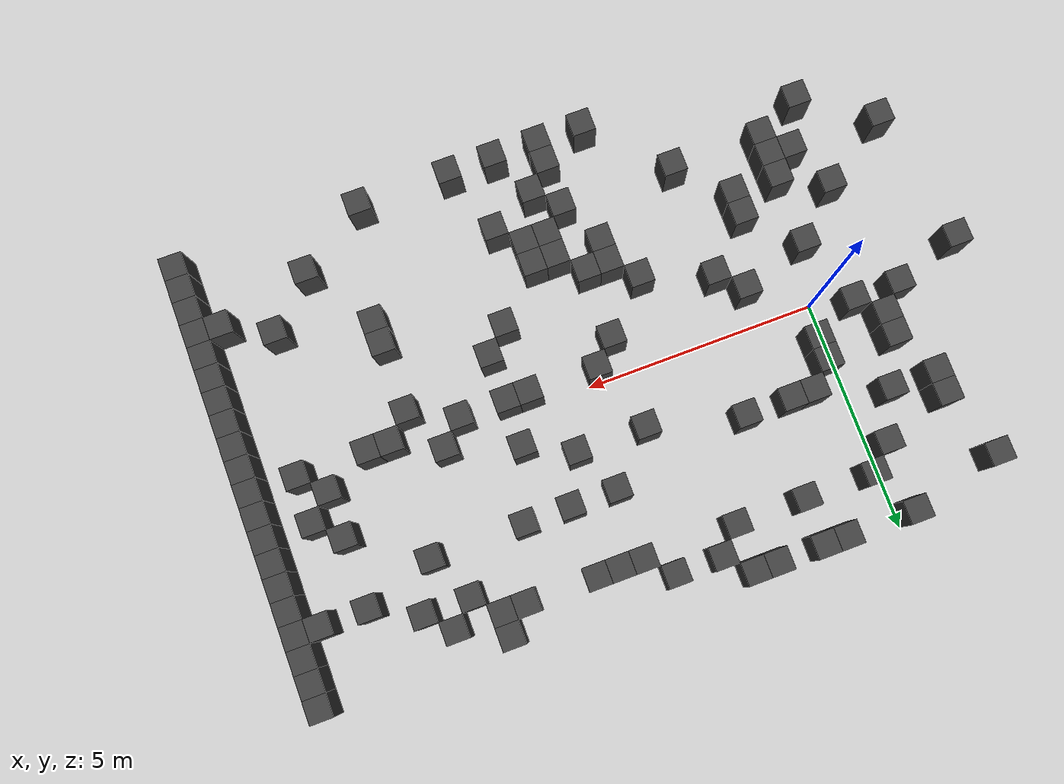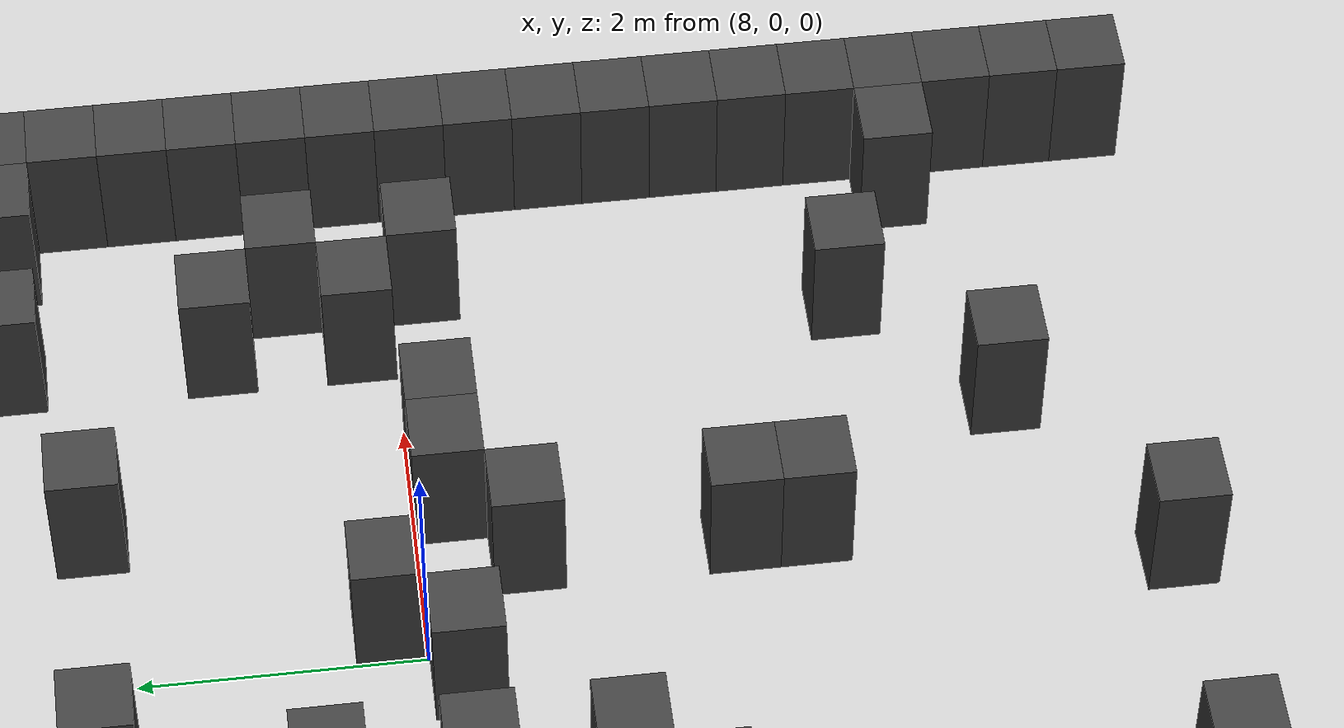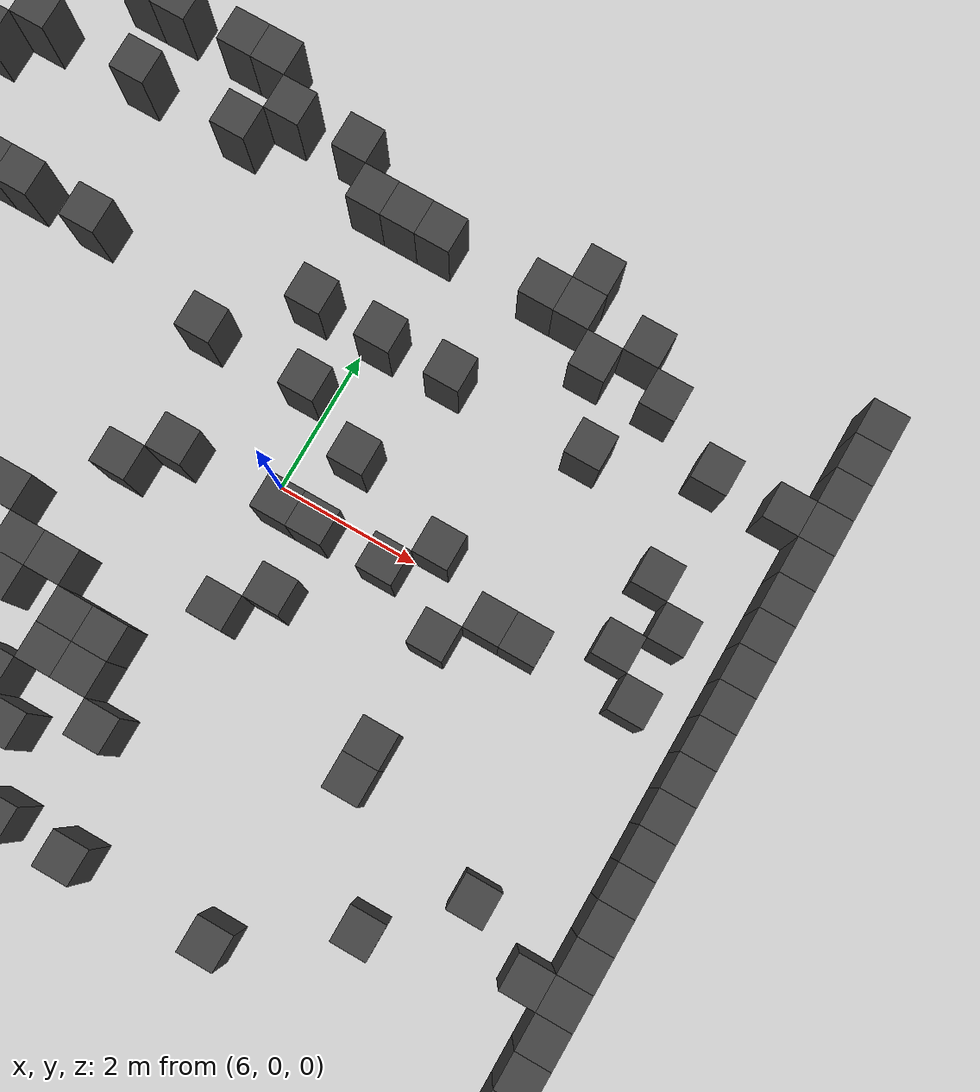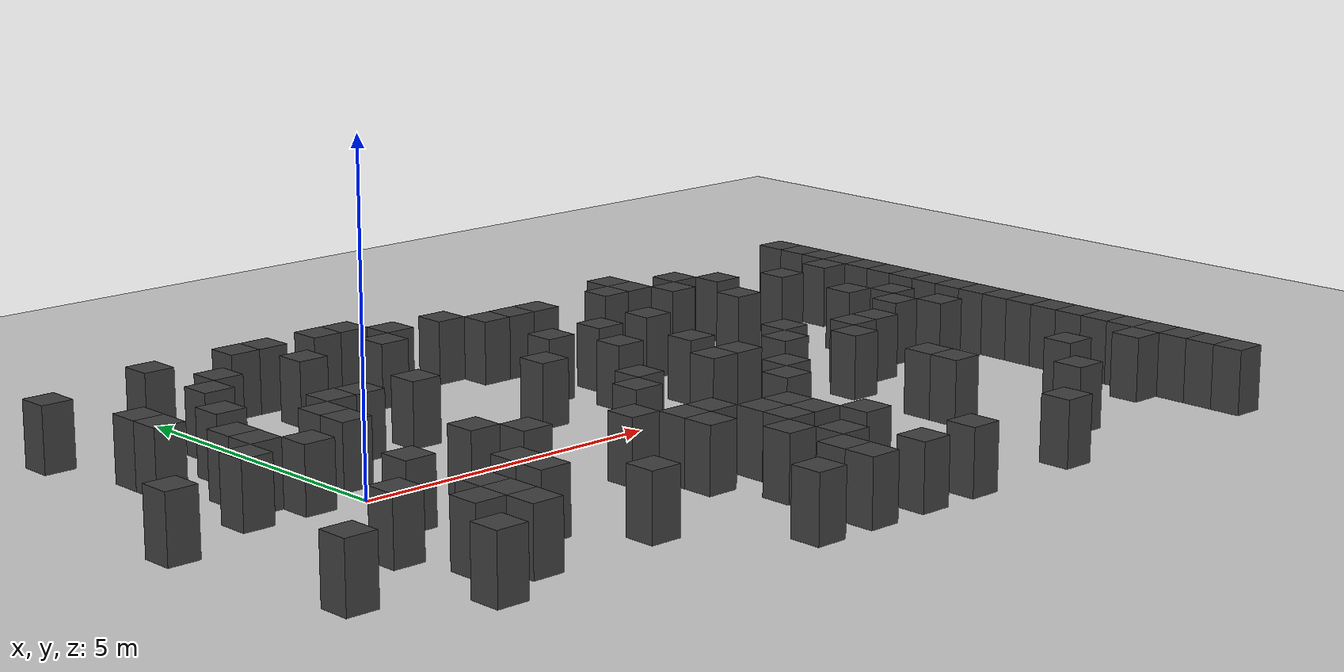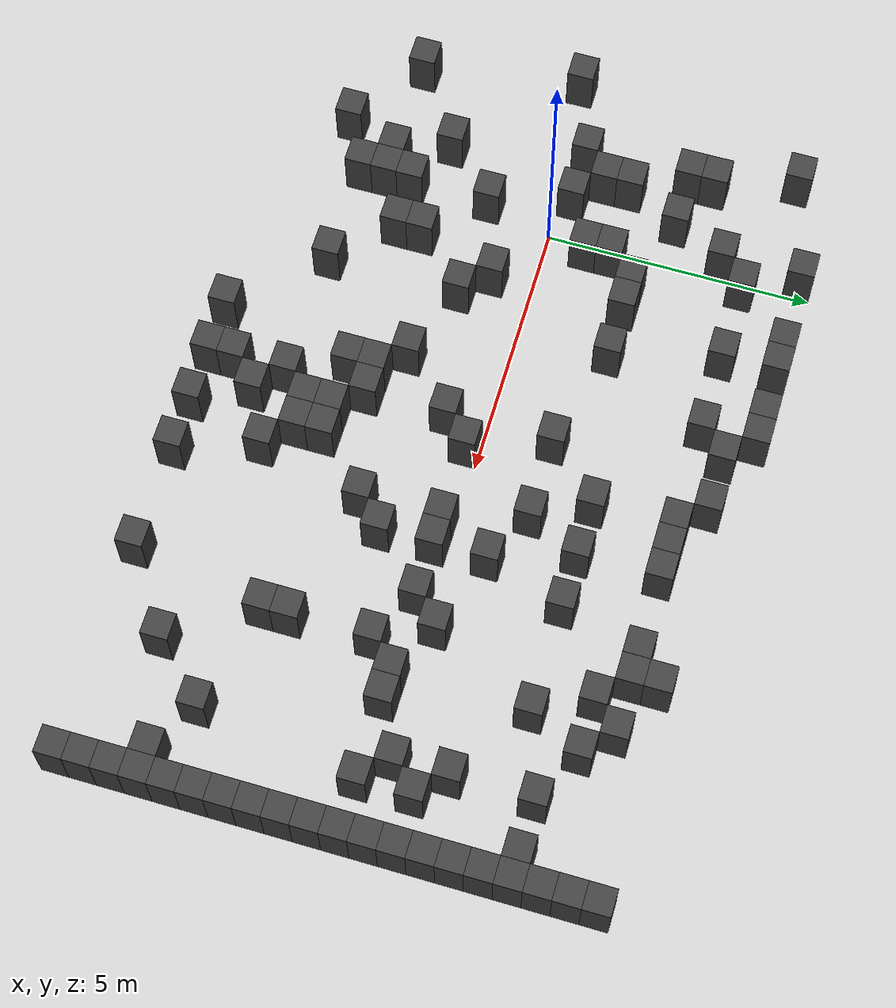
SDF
<sdf version="1.7">
 <world name="map_3158">
  <model name="ground_plane">
   <static>true</static>
   <link name="link">
    <collision name="collision">
     <geometry><plane><normal>0 0 1</normal><size>200 200</size></plane></geometry>
    </collision>
    <visual name="visual">
     <geometry><plane><normal>0 0 1</normal><size>200 200</size></plane></geometry>
     <material><ambient>0.8 0.8 0.8 1</ambient><diffuse>0.8 0.8 0.8 1</diffuse></material>
    </visual>
   </link>
  </model>
  <model name="maze_environment">
   <static>true</static>
   <link name="wall_187">
    <pose>-0.250 4.750 0.500 0 0 0</pose>
    <collision name="col"><geometry><box><size>0.5 0.5 1.0</size></box></geometry></collision>
    <visual name="vis">
     <geometry><box><size>0.5 0.5 1.0</size></box></geometry>
     <material><ambient>0.15 0.15 0.15 1</ambient><diffuse>0.25 0.25 0.25 1</diffuse></material>
    </visual>
   </link>
   <link name="wall_188">
    <pose>1.250 4.750 0.500 0 0 0</pose>
    <collision name="col"><geometry><box><size>0.5 0.5 1.0</size></box></geometry></collision>
    <visual name="vis">
     <geometry><box><size>0.5 0.5 1.0</size></box></geometry>
     <material><ambient>0.15 0.15 0.15 1</ambient><diffuse>0.25 0.25 0.25 1</diffuse></material>
    </visual>
   </link>
   <link name="wall_189">
    <pose>1.750 4.750 0.500 0 0 0</pose>
    <collision name="col"><geometry><box><size>0.5 0.5 1.0</size></box></geometry></collision>
    <visual name="vis">
     <geometry><box><size>0.5 0.5 1.0</size></box></geometry>
     <material><ambient>0.15 0.15 0.15 1</ambient><diffuse>0.25 0.25 0.25 1</diffuse></material>
    </visual>
   </link>
   <link name="wall_190">
    <pose>2.750 4.750 0.500 0 0 0</pose>
    <collision name="col"><geometry><box><size>0.5 0.5 1.0</size></box></geometry></collision>
    <visual name="vis">
     <geometry><box><size>0.5 0.5 1.0</size></box></geometry>
     <material><ambient>0.15 0.15 0.15 1</ambient><diffuse>0.25 0.25 0.25 1</diffuse></material>
    </visual>
   </link>
   <link name="wall_191">
    <pose>3.250 4.750 0.500 0 0 0</pose>
    <collision name="col"><geometry><box><size>0.5 0.5 1.0</size></box></geometry></collision>
    <visual name="vis">
     <geometry><box><size>0.5 0.5 1.0</size></box></geometry>
     <material><ambient>0.15 0.15 0.15 1</ambient><diffuse>0.25 0.25 0.25 1</diffuse></material>
    </visual>
   </link>
   <link name="wall_198">
    <pose>-2.250 4.250 0.500 0 0 0</pose>
    <collision name="col"><geometry><box><size>0.5 0.5 1.0</size></box></geometry></collision>
    <visual name="vis">
     <geometry><box><size>0.5 0.5 1.0</size></box></geometry>
     <material><ambient>0.15 0.15 0.15 1</ambient><diffuse>0.25 0.25 0.25 1</diffuse></material>
    </visual>
   </link>
   <link name="wall_199">
    <pose>3.750 4.250 0.500 0 0 0</pose>
    <collision name="col"><geometry><box><size>0.5 0.5 1.0</size></box></geometry></collision>
    <visual name="vis">
     <geometry><box><size>0.5 0.5 1.0</size></box></geometry>
     <material><ambient>0.15 0.15 0.15 1</ambient><diffuse>0.25 0.25 0.25 1</diffuse></material>
    </visual>
   </link>
   <link name="wall_200">
    <pose>4.750 4.250 0.500 0 0 0</pose>
    <collision name="col"><geometry><box><size>0.5 0.5 1.0</size></box></geometry></collision>
    <visual name="vis">
     <geometry><box><size>0.5 0.5 1.0</size></box></geometry>
     <material><ambient>0.15 0.15 0.15 1</ambient><diffuse>0.25 0.25 0.25 1</diffuse></material>
    </visual>
   </link>
   <link name="wall_201">
    <pose>8.250 4.250 0.500 0 0 0</pose>
    <collision name="col"><geometry><box><size>0.5 0.5 1.0</size></box></geometry></collision>
    <visual name="vis">
     <geometry><box><size>0.5 0.5 1.0</size></box></geometry>
     <material><ambient>0.15 0.15 0.15 1</ambient><diffuse>0.25 0.25 0.25 1</diffuse></material>
    </visual>
   </link>
   <link name="wall_202">
    <pose>12.250 4.250 0.500 0 0 0</pose>
    <collision name="col"><geometry><box><size>0.5 0.5 1.0</size></box></geometry></collision>
    <visual name="vis">
     <geometry><box><size>0.5 0.5 1.0</size></box></geometry>
     <material><ambient>0.15 0.15 0.15 1</ambient><diffuse>0.25 0.25 0.25 1</diffuse></material>
    </visual>
   </link>
   <link name="wall_206">
    <pose>0.250 3.750 0.500 0 0 0</pose>
    <collision name="col"><geometry><box><size>0.5 0.5 1.0</size></box></geometry></collision>
    <visual name="vis">
     <geometry><box><size>0.5 0.5 1.0</size></box></geometry>
     <material><ambient>0.15 0.15 0.15 1</ambient><diffuse>0.25 0.25 0.25 1</diffuse></material>
    </visual>
   </link>
   <link name="wall_207">
    <pose>1.750 3.750 0.500 0 0 0</pose>
    <collision name="col"><geometry><box><size>0.5 0.5 1.0</size></box></geometry></collision>
    <visual name="vis">
     <geometry><box><size>0.5 0.5 1.0</size></box></geometry>
     <material><ambient>0.15 0.15 0.15 1</ambient><diffuse>0.25 0.25 0.25 1</diffuse></material>
    </visual>
   </link>
   <link name="wall_208">
    <pose>3.250 3.750 0.500 0 0 0</pose>
    <collision name="col"><geometry><box><size>0.5 0.5 1.0</size></box></geometry></collision>
    <visual name="vis">
     <geometry><box><size>0.5 0.5 1.0</size></box></geometry>
     <material><ambient>0.15 0.15 0.15 1</ambient><diffuse>0.25 0.25 0.25 1</diffuse></material>
    </visual>
   </link>
   <link name="wall_209">
    <pose>5.250 3.750 0.500 0 0 0</pose>
    <collision name="col"><geometry><box><size>0.5 0.5 1.0</size></box></geometry></collision>
    <visual name="vis">
     <geometry><box><size>0.5 0.5 1.0</size></box></geometry>
     <material><ambient>0.15 0.15 0.15 1</ambient><diffuse>0.25 0.25 0.25 1</diffuse></material>
    </visual>
   </link>
   <link name="wall_210">
    <pose>5.750 3.750 0.500 0 0 0</pose>
    <collision name="col"><geometry><box><size>0.5 0.5 1.0</size></box></geometry></collision>
    <visual name="vis">
     <geometry><box><size>0.5 0.5 1.0</size></box></geometry>
     <material><ambient>0.15 0.15 0.15 1</ambient><diffuse>0.25 0.25 0.25 1</diffuse></material>
    </visual>
   </link>
   <link name="wall_211">
    <pose>6.250 3.750 0.500 0 0 0</pose>
    <collision name="col"><geometry><box><size>0.5 0.5 1.0</size></box></geometry></collision>
    <visual name="vis">
     <geometry><box><size>0.5 0.5 1.0</size></box></geometry>
     <material><ambient>0.15 0.15 0.15 1</ambient><diffuse>0.25 0.25 0.25 1</diffuse></material>
    </visual>
   </link>
   <link name="wall_212">
    <pose>7.750 3.750 0.500 0 0 0</pose>
    <collision name="col"><geometry><box><size>0.5 0.5 1.0</size></box></geometry></collision>
    <visual name="vis">
     <geometry><box><size>0.5 0.5 1.0</size></box></geometry>
     <material><ambient>0.15 0.15 0.15 1</ambient><diffuse>0.25 0.25 0.25 1</diffuse></material>
    </visual>
   </link>
   <link name="wall_213">
    <pose>8.250 3.750 0.500 0 0 0</pose>
    <collision name="col"><geometry><box><size>0.5 0.5 1.0</size></box></geometry></collision>
    <visual name="vis">
     <geometry><box><size>0.5 0.5 1.0</size></box></geometry>
     <material><ambient>0.15 0.15 0.15 1</ambient><diffuse>0.25 0.25 0.25 1</diffuse></material>
    </visual>
   </link>
   <link name="wall_214">
    <pose>9.250 3.750 0.500 0 0 0</pose>
    <collision name="col"><geometry><box><size>0.5 0.5 1.0</size></box></geometry></collision>
    <visual name="vis">
     <geometry><box><size>0.5 0.5 1.0</size></box></geometry>
     <material><ambient>0.15 0.15 0.15 1</ambient><diffuse>0.25 0.25 0.25 1</diffuse></material>
    </visual>
   </link>
   <link name="wall_215">
    <pose>12.250 3.750 0.500 0 0 0</pose>
    <collision name="col"><geometry><box><size>0.5 0.5 1.0</size></box></geometry></collision>
    <visual name="vis">
     <geometry><box><size>0.5 0.5 1.0</size></box></geometry>
     <material><ambient>0.15 0.15 0.15 1</ambient><diffuse>0.25 0.25 0.25 1</diffuse></material>
    </visual>
   </link>
   <link name="wall_222">
    <pose>-0.250 3.250 0.500 0 0 0</pose>
    <collision name="col"><geometry><box><size>0.5 0.5 1.0</size></box></geometry></collision>
    <visual name="vis">
     <geometry><box><size>0.5 0.5 1.0</size></box></geometry>
     <material><ambient>0.15 0.15 0.15 1</ambient><diffuse>0.25 0.25 0.25 1</diffuse></material>
    </visual>
   </link>
   <link name="wall_223">
    <pose>8.750 3.250 0.500 0 0 0</pose>
    <collision name="col"><geometry><box><size>0.5 0.5 1.0</size></box></geometry></collision>
    <visual name="vis">
     <geometry><box><size>0.5 0.5 1.0</size></box></geometry>
     <material><ambient>0.15 0.15 0.15 1</ambient><diffuse>0.25 0.25 0.25 1</diffuse></material>
    </visual>
   </link>
   <link name="wall_224">
    <pose>9.750 3.250 0.500 0 0 0</pose>
    <collision name="col"><geometry><box><size>0.5 0.5 1.0</size></box></geometry></collision>
    <visual name="vis">
     <geometry><box><size>0.5 0.5 1.0</size></box></geometry>
     <material><ambient>0.15 0.15 0.15 1</ambient><diffuse>0.25 0.25 0.25 1</diffuse></material>
    </visual>
   </link>
   <link name="wall_225">
    <pose>12.250 3.250 0.500 0 0 0</pose>
    <collision name="col"><geometry><box><size>0.5 0.5 1.0</size></box></geometry></collision>
    <visual name="vis">
     <geometry><box><size>0.5 0.5 1.0</size></box></geometry>
     <material><ambient>0.15 0.15 0.15 1</ambient><diffuse>0.25 0.25 0.25 1</diffuse></material>
    </visual>
   </link>
   <link name="wall_228">
    <pose>-1.750 2.750 0.500 0 0 0</pose>
    <collision name="col"><geometry><box><size>0.5 0.5 1.0</size></box></geometry></collision>
    <visual name="vis">
     <geometry><box><size>0.5 0.5 1.0</size></box></geometry>
     <material><ambient>0.15 0.15 0.15 1</ambient><diffuse>0.25 0.25 0.25 1</diffuse></material>
    </visual>
   </link>
   <link name="wall_229">
    <pose>10.750 2.750 0.500 0 0 0</pose>
    <collision name="col"><geometry><box><size>0.5 0.5 1.0</size></box></geometry></collision>
    <visual name="vis">
     <geometry><box><size>0.5 0.5 1.0</size></box></geometry>
     <material><ambient>0.15 0.15 0.15 1</ambient><diffuse>0.25 0.25 0.25 1</diffuse></material>
    </visual>
   </link>
   <link name="wall_230">
    <pose>11.750 2.750 0.500 0 0 0</pose>
    <collision name="col"><geometry><box><size>0.5 0.5 1.0</size></box></geometry></collision>
    <visual name="vis">
     <geometry><box><size>0.5 0.5 1.0</size></box></geometry>
     <material><ambient>0.15 0.15 0.15 1</ambient><diffuse>0.25 0.25 0.25 1</diffuse></material>
    </visual>
   </link>
   <link name="wall_231">
    <pose>12.250 2.750 0.500 0 0 0</pose>
    <collision name="col"><geometry><box><size>0.5 0.5 1.0</size></box></geometry></collision>
    <visual name="vis">
     <geometry><box><size>0.5 0.5 1.0</size></box></geometry>
     <material><ambient>0.15 0.15 0.15 1</ambient><diffuse>0.25 0.25 0.25 1</diffuse></material>
    </visual>
   </link>
   <link name="wall_239">
    <pose>-1.750 2.250 0.500 0 0 0</pose>
    <collision name="col"><geometry><box><size>0.5 0.5 1.0</size></box></geometry></collision>
    <visual name="vis">
     <geometry><box><size>0.5 0.5 1.0</size></box></geometry>
     <material><ambient>0.15 0.15 0.15 1</ambient><diffuse>0.25 0.25 0.25 1</diffuse></material>
    </visual>
   </link>
   <link name="wall_240">
    <pose>-0.750 2.250 0.500 0 0 0</pose>
    <collision name="col"><geometry><box><size>0.5 0.5 1.0</size></box></geometry></collision>
    <visual name="vis">
     <geometry><box><size>0.5 0.5 1.0</size></box></geometry>
     <material><ambient>0.15 0.15 0.15 1</ambient><diffuse>0.25 0.25 0.25 1</diffuse></material>
    </visual>
   </link>
   <link name="wall_241">
    <pose>5.250 2.250 0.500 0 0 0</pose>
    <collision name="col"><geometry><box><size>0.5 0.5 1.0</size></box></geometry></collision>
    <visual name="vis">
     <geometry><box><size>0.5 0.5 1.0</size></box></geometry>
     <material><ambient>0.15 0.15 0.15 1</ambient><diffuse>0.25 0.25 0.25 1</diffuse></material>
    </visual>
   </link>
   <link name="wall_242">
    <pose>6.250 2.250 0.500 0 0 0</pose>
    <collision name="col"><geometry><box><size>0.5 0.5 1.0</size></box></geometry></collision>
    <visual name="vis">
     <geometry><box><size>0.5 0.5 1.0</size></box></geometry>
     <material><ambient>0.15 0.15 0.15 1</ambient><diffuse>0.25 0.25 0.25 1</diffuse></material>
    </visual>
   </link>
   <link name="wall_243">
    <pose>7.250 2.250 0.500 0 0 0</pose>
    <collision name="col"><geometry><box><size>0.5 0.5 1.0</size></box></geometry></collision>
    <visual name="vis">
     <geometry><box><size>0.5 0.5 1.0</size></box></geometry>
     <material><ambient>0.15 0.15 0.15 1</ambient><diffuse>0.25 0.25 0.25 1</diffuse></material>
    </visual>
   </link>
   <link name="wall_244">
    <pose>9.250 2.250 0.500 0 0 0</pose>
    <collision name="col"><geometry><box><size>0.5 0.5 1.0</size></box></geometry></collision>
    <visual name="vis">
     <geometry><box><size>0.5 0.5 1.0</size></box></geometry>
     <material><ambient>0.15 0.15 0.15 1</ambient><diffuse>0.25 0.25 0.25 1</diffuse></material>
    </visual>
   </link>
   <link name="wall_245">
    <pose>12.250 2.250 0.500 0 0 0</pose>
    <collision name="col"><geometry><box><size>0.5 0.5 1.0</size></box></geometry></collision>
    <visual name="vis">
     <geometry><box><size>0.5 0.5 1.0</size></box></geometry>
     <material><ambient>0.15 0.15 0.15 1</ambient><diffuse>0.25 0.25 0.25 1</diffuse></material>
    </visual>
   </link>
   <link name="wall_249">
    <pose>0.750 1.750 0.500 0 0 0</pose>
    <collision name="col"><geometry><box><size>0.5 0.5 1.0</size></box></geometry></collision>
    <visual name="vis">
     <geometry><box><size>0.5 0.5 1.0</size></box></geometry>
     <material><ambient>0.15 0.15 0.15 1</ambient><diffuse>0.25 0.25 0.25 1</diffuse></material>
    </visual>
   </link>
   <link name="wall_250">
    <pose>1.250 1.750 0.500 0 0 0</pose>
    <collision name="col"><geometry><box><size>0.5 0.5 1.0</size></box></geometry></collision>
    <visual name="vis">
     <geometry><box><size>0.5 0.5 1.0</size></box></geometry>
     <material><ambient>0.15 0.15 0.15 1</ambient><diffuse>0.25 0.25 0.25 1</diffuse></material>
    </visual>
   </link>
   <link name="wall_251">
    <pose>2.250 1.750 0.500 0 0 0</pose>
    <collision name="col"><geometry><box><size>0.5 0.5 1.0</size></box></geometry></collision>
    <visual name="vis">
     <geometry><box><size>0.5 0.5 1.0</size></box></geometry>
     <material><ambient>0.15 0.15 0.15 1</ambient><diffuse>0.25 0.25 0.25 1</diffuse></material>
    </visual>
   </link>
   <link name="wall_252">
    <pose>12.250 1.750 0.500 0 0 0</pose>
    <collision name="col"><geometry><box><size>0.5 0.5 1.0</size></box></geometry></collision>
    <visual name="vis">
     <geometry><box><size>0.5 0.5 1.0</size></box></geometry>
     <material><ambient>0.15 0.15 0.15 1</ambient><diffuse>0.25 0.25 0.25 1</diffuse></material>
    </visual>
   </link>
   <link name="wall_257">
    <pose>-1.250 1.250 0.500 0 0 0</pose>
    <collision name="col"><geometry><box><size>0.5 0.5 1.0</size></box></geometry></collision>
    <visual name="vis">
     <geometry><box><size>0.5 0.5 1.0</size></box></geometry>
     <material><ambient>0.15 0.15 0.15 1</ambient><diffuse>0.25 0.25 0.25 1</diffuse></material>
    </visual>
   </link>
   <link name="wall_258">
    <pose>0.250 1.250 0.500 0 0 0</pose>
    <collision name="col"><geometry><box><size>0.5 0.5 1.0</size></box></geometry></collision>
    <visual name="vis">
     <geometry><box><size>0.5 0.5 1.0</size></box></geometry>
     <material><ambient>0.15 0.15 0.15 1</ambient><diffuse>0.25 0.25 0.25 1</diffuse></material>
    </visual>
   </link>
   <link name="wall_259">
    <pose>4.250 1.250 0.500 0 0 0</pose>
    <collision name="col"><geometry><box><size>0.5 0.5 1.0</size></box></geometry></collision>
    <visual name="vis">
     <geometry><box><size>0.5 0.5 1.0</size></box></geometry>
     <material><ambient>0.15 0.15 0.15 1</ambient><diffuse>0.25 0.25 0.25 1</diffuse></material>
    </visual>
   </link>
   <link name="wall_260">
    <pose>5.750 1.250 0.500 0 0 0</pose>
    <collision name="col"><geometry><box><size>0.5 0.5 1.0</size></box></geometry></collision>
    <visual name="vis">
     <geometry><box><size>0.5 0.5 1.0</size></box></geometry>
     <material><ambient>0.15 0.15 0.15 1</ambient><diffuse>0.25 0.25 0.25 1</diffuse></material>
    </visual>
   </link>
   <link name="wall_261">
    <pose>10.750 1.250 0.500 0 0 0</pose>
    <collision name="col"><geometry><box><size>0.5 0.5 1.0</size></box></geometry></collision>
    <visual name="vis">
     <geometry><box><size>0.5 0.5 1.0</size></box></geometry>
     <material><ambient>0.15 0.15 0.15 1</ambient><diffuse>0.25 0.25 0.25 1</diffuse></material>
    </visual>
   </link>
   <link name="wall_262">
    <pose>12.250 1.250 0.500 0 0 0</pose>
    <collision name="col"><geometry><box><size>0.5 0.5 1.0</size></box></geometry></collision>
    <visual name="vis">
     <geometry><box><size>0.5 0.5 1.0</size></box></geometry>
     <material><ambient>0.15 0.15 0.15 1</ambient><diffuse>0.25 0.25 0.25 1</diffuse></material>
    </visual>
   </link>
   <link name="wall_266">
    <pose>-1.250 0.750 0.500 0 0 0</pose>
    <collision name="col"><geometry><box><size>0.5 0.5 1.0</size></box></geometry></collision>
    <visual name="vis">
     <geometry><box><size>0.5 0.5 1.0</size></box></geometry>
     <material><ambient>0.15 0.15 0.15 1</ambient><diffuse>0.25 0.25 0.25 1</diffuse></material>
    </visual>
   </link>
   <link name="wall_267">
    <pose>0.250 0.750 0.500 0 0 0</pose>
    <collision name="col"><geometry><box><size>0.5 0.5 1.0</size></box></geometry></collision>
    <visual name="vis">
     <geometry><box><size>0.5 0.5 1.0</size></box></geometry>
     <material><ambient>0.15 0.15 0.15 1</ambient><diffuse>0.25 0.25 0.25 1</diffuse></material>
    </visual>
   </link>
   <link name="wall_268">
    <pose>6.750 0.750 0.500 0 0 0</pose>
    <collision name="col"><geometry><box><size>0.5 0.5 1.0</size></box></geometry></collision>
    <visual name="vis">
     <geometry><box><size>0.5 0.5 1.0</size></box></geometry>
     <material><ambient>0.15 0.15 0.15 1</ambient><diffuse>0.25 0.25 0.25 1</diffuse></material>
    </visual>
   </link>
   <link name="wall_269">
    <pose>11.250 0.750 0.500 0 0 0</pose>
    <collision name="col"><geometry><box><size>0.5 0.5 1.0</size></box></geometry></collision>
    <visual name="vis">
     <geometry><box><size>0.5 0.5 1.0</size></box></geometry>
     <material><ambient>0.15 0.15 0.15 1</ambient><diffuse>0.25 0.25 0.25 1</diffuse></material>
    </visual>
   </link>
   <link name="wall_270">
    <pose>12.250 0.750 0.500 0 0 0</pose>
    <collision name="col"><geometry><box><size>0.5 0.5 1.0</size></box></geometry></collision>
    <visual name="vis">
     <geometry><box><size>0.5 0.5 1.0</size></box></geometry>
     <material><ambient>0.15 0.15 0.15 1</ambient><diffuse>0.25 0.25 0.25 1</diffuse></material>
    </visual>
   </link>
   <link name="wall_273">
    <pose>-1.750 0.250 0.500 0 0 0</pose>
    <collision name="col"><geometry><box><size>0.5 0.5 1.0</size></box></geometry></collision>
    <visual name="vis">
     <geometry><box><size>0.5 0.5 1.0</size></box></geometry>
     <material><ambient>0.15 0.15 0.15 1</ambient><diffuse>0.25 0.25 0.25 1</diffuse></material>
    </visual>
   </link>
   <link name="wall_274">
    <pose>-0.750 0.250 0.500 0 0 0</pose>
    <collision name="col"><geometry><box><size>0.5 0.5 1.0</size></box></geometry></collision>
    <visual name="vis">
     <geometry><box><size>0.5 0.5 1.0</size></box></geometry>
     <material><ambient>0.15 0.15 0.15 1</ambient><diffuse>0.25 0.25 0.25 1</diffuse></material>
    </visual>
   </link>
   <link name="wall_275">
    <pose>8.250 0.250 0.500 0 0 0</pose>
    <collision name="col"><geometry><box><size>0.5 0.5 1.0</size></box></geometry></collision>
    <visual name="vis">
     <geometry><box><size>0.5 0.5 1.0</size></box></geometry>
     <material><ambient>0.15 0.15 0.15 1</ambient><diffuse>0.25 0.25 0.25 1</diffuse></material>
    </visual>
   </link>
   <link name="wall_276">
    <pose>10.750 0.250 0.500 0 0 0</pose>
    <collision name="col"><geometry><box><size>0.5 0.5 1.0</size></box></geometry></collision>
    <visual name="vis">
     <geometry><box><size>0.5 0.5 1.0</size></box></geometry>
     <material><ambient>0.15 0.15 0.15 1</ambient><diffuse>0.25 0.25 0.25 1</diffuse></material>
    </visual>
   </link>
   <link name="wall_277">
    <pose>12.250 0.250 0.500 0 0 0</pose>
    <collision name="col"><geometry><box><size>0.5 0.5 1.0</size></box></geometry></collision>
    <visual name="vis">
     <geometry><box><size>0.5 0.5 1.0</size></box></geometry>
     <material><ambient>0.15 0.15 0.15 1</ambient><diffuse>0.25 0.25 0.25 1</diffuse></material>
    </visual>
   </link>
   <link name="wall_282">
    <pose>-3.250 -0.250 0.500 0 0 0</pose>
    <collision name="col"><geometry><box><size>0.5 0.5 1.0</size></box></geometry></collision>
    <visual name="vis">
     <geometry><box><size>0.5 0.5 1.0</size></box></geometry>
     <material><ambient>0.15 0.15 0.15 1</ambient><diffuse>0.25 0.25 0.25 1</diffuse></material>
    </visual>
   </link>
   <link name="wall_283">
    <pose>4.750 -0.250 0.500 0 0 0</pose>
    <collision name="col"><geometry><box><size>0.5 0.5 1.0</size></box></geometry></collision>
    <visual name="vis">
     <geometry><box><size>0.5 0.5 1.0</size></box></geometry>
     <material><ambient>0.15 0.15 0.15 1</ambient><diffuse>0.25 0.25 0.25 1</diffuse></material>
    </visual>
   </link>
   <link name="wall_284">
    <pose>6.250 -0.250 0.500 0 0 0</pose>
    <collision name="col"><geometry><box><size>0.5 0.5 1.0</size></box></geometry></collision>
    <visual name="vis">
     <geometry><box><size>0.5 0.5 1.0</size></box></geometry>
     <material><ambient>0.15 0.15 0.15 1</ambient><diffuse>0.25 0.25 0.25 1</diffuse></material>
    </visual>
   </link>
   <link name="wall_285">
    <pose>6.750 -0.250 0.500 0 0 0</pose>
    <collision name="col"><geometry><box><size>0.5 0.5 1.0</size></box></geometry></collision>
    <visual name="vis">
     <geometry><box><size>0.5 0.5 1.0</size></box></geometry>
     <material><ambient>0.15 0.15 0.15 1</ambient><diffuse>0.25 0.25 0.25 1</diffuse></material>
    </visual>
   </link>
   <link name="wall_286">
    <pose>7.750 -0.250 0.500 0 0 0</pose>
    <collision name="col"><geometry><box><size>0.5 0.5 1.0</size></box></geometry></collision>
    <visual name="vis">
     <geometry><box><size>0.5 0.5 1.0</size></box></geometry>
     <material><ambient>0.15 0.15 0.15 1</ambient><diffuse>0.25 0.25 0.25 1</diffuse></material>
    </visual>
   </link>
   <link name="wall_287">
    <pose>9.250 -0.250 0.500 0 0 0</pose>
    <collision name="col"><geometry><box><size>0.5 0.5 1.0</size></box></geometry></collision>
    <visual name="vis">
     <geometry><box><size>0.5 0.5 1.0</size></box></geometry>
     <material><ambient>0.15 0.15 0.15 1</ambient><diffuse>0.25 0.25 0.25 1</diffuse></material>
    </visual>
   </link>
   <link name="wall_288">
    <pose>9.750 -0.250 0.500 0 0 0</pose>
    <collision name="col"><geometry><box><size>0.5 0.5 1.0</size></box></geometry></collision>
    <visual name="vis">
     <geometry><box><size>0.5 0.5 1.0</size></box></geometry>
     <material><ambient>0.15 0.15 0.15 1</ambient><diffuse>0.25 0.25 0.25 1</diffuse></material>
    </visual>
   </link>
   <link name="wall_289">
    <pose>11.250 -0.250 0.500 0 0 0</pose>
    <collision name="col"><geometry><box><size>0.5 0.5 1.0</size></box></geometry></collision>
    <visual name="vis">
     <geometry><box><size>0.5 0.5 1.0</size></box></geometry>
     <material><ambient>0.15 0.15 0.15 1</ambient><diffuse>0.25 0.25 0.25 1</diffuse></material>
    </visual>
   </link>
   <link name="wall_290">
    <pose>12.250 -0.250 0.500 0 0 0</pose>
    <collision name="col"><geometry><box><size>0.5 0.5 1.0</size></box></geometry></collision>
    <visual name="vis">
     <geometry><box><size>0.5 0.5 1.0</size></box></geometry>
     <material><ambient>0.15 0.15 0.15 1</ambient><diffuse>0.25 0.25 0.25 1</diffuse></material>
    </visual>
   </link>
   <link name="wall_296">
    <pose>1.250 -0.750 0.500 0 0 0</pose>
    <collision name="col"><geometry><box><size>0.5 0.5 1.0</size></box></geometry></collision>
    <visual name="vis">
     <geometry><box><size>0.5 0.5 1.0</size></box></geometry>
     <material><ambient>0.15 0.15 0.15 1</ambient><diffuse>0.25 0.25 0.25 1</diffuse></material>
    </visual>
   </link>
   <link name="wall_297">
    <pose>4.250 -0.750 0.500 0 0 0</pose>
    <collision name="col"><geometry><box><size>0.5 0.5 1.0</size></box></geometry></collision>
    <visual name="vis">
     <geometry><box><size>0.5 0.5 1.0</size></box></geometry>
     <material><ambient>0.15 0.15 0.15 1</ambient><diffuse>0.25 0.25 0.25 1</diffuse></material>
    </visual>
   </link>
   <link name="wall_298">
    <pose>8.750 -0.750 0.500 0 0 0</pose>
    <collision name="col"><geometry><box><size>0.5 0.5 1.0</size></box></geometry></collision>
    <visual name="vis">
     <geometry><box><size>0.5 0.5 1.0</size></box></geometry>
     <material><ambient>0.15 0.15 0.15 1</ambient><diffuse>0.25 0.25 0.25 1</diffuse></material>
    </visual>
   </link>
   <link name="wall_299">
    <pose>12.250 -0.750 0.500 0 0 0</pose>
    <collision name="col"><geometry><box><size>0.5 0.5 1.0</size></box></geometry></collision>
    <visual name="vis">
     <geometry><box><size>0.5 0.5 1.0</size></box></geometry>
     <material><ambient>0.15 0.15 0.15 1</ambient><diffuse>0.25 0.25 0.25 1</diffuse></material>
    </visual>
   </link>
   <link name="wall_304">
    <pose>-0.250 -1.250 0.500 0 0 0</pose>
    <collision name="col"><geometry><box><size>0.5 0.5 1.0</size></box></geometry></collision>
    <visual name="vis">
     <geometry><box><size>0.5 0.5 1.0</size></box></geometry>
     <material><ambient>0.15 0.15 0.15 1</ambient><diffuse>0.25 0.25 0.25 1</diffuse></material>
    </visual>
   </link>
   <link name="wall_305">
    <pose>1.750 -1.250 0.500 0 0 0</pose>
    <collision name="col"><geometry><box><size>0.5 0.5 1.0</size></box></geometry></collision>
    <visual name="vis">
     <geometry><box><size>0.5 0.5 1.0</size></box></geometry>
     <material><ambient>0.15 0.15 0.15 1</ambient><diffuse>0.25 0.25 0.25 1</diffuse></material>
    </visual>
   </link>
   <link name="wall_306">
    <pose>6.750 -1.250 0.500 0 0 0</pose>
    <collision name="col"><geometry><box><size>0.5 0.5 1.0</size></box></geometry></collision>
    <visual name="vis">
     <geometry><box><size>0.5 0.5 1.0</size></box></geometry>
     <material><ambient>0.15 0.15 0.15 1</ambient><diffuse>0.25 0.25 0.25 1</diffuse></material>
    </visual>
   </link>
   <link name="wall_307">
    <pose>12.250 -1.250 0.500 0 0 0</pose>
    <collision name="col"><geometry><box><size>0.5 0.5 1.0</size></box></geometry></collision>
    <visual name="vis">
     <geometry><box><size>0.5 0.5 1.0</size></box></geometry>
     <material><ambient>0.15 0.15 0.15 1</ambient><diffuse>0.25 0.25 0.25 1</diffuse></material>
    </visual>
   </link>
   <link name="wall_313">
    <pose>3.250 -1.750 0.500 0 0 0</pose>
    <collision name="col"><geometry><box><size>0.5 0.5 1.0</size></box></geometry></collision>
    <visual name="vis">
     <geometry><box><size>0.5 0.5 1.0</size></box></geometry>
     <material><ambient>0.15 0.15 0.15 1</ambient><diffuse>0.25 0.25 0.25 1</diffuse></material>
    </visual>
   </link>
   <link name="wall_314">
    <pose>6.250 -1.750 0.500 0 0 0</pose>
    <collision name="col"><geometry><box><size>0.5 0.5 1.0</size></box></geometry></collision>
    <visual name="vis">
     <geometry><box><size>0.5 0.5 1.0</size></box></geometry>
     <material><ambient>0.15 0.15 0.15 1</ambient><diffuse>0.25 0.25 0.25 1</diffuse></material>
    </visual>
   </link>
   <link name="wall_315">
    <pose>12.250 -1.750 0.500 0 0 0</pose>
    <collision name="col"><geometry><box><size>0.5 0.5 1.0</size></box></geometry></collision>
    <visual name="vis">
     <geometry><box><size>0.5 0.5 1.0</size></box></geometry>
     <material><ambient>0.15 0.15 0.15 1</ambient><diffuse>0.25 0.25 0.25 1</diffuse></material>
    </visual>
   </link>
   <link name="wall_319">
    <pose>-1.250 -2.250 0.500 0 0 0</pose>
    <collision name="col"><geometry><box><size>0.5 0.5 1.0</size></box></geometry></collision>
    <visual name="vis">
     <geometry><box><size>0.5 0.5 1.0</size></box></geometry>
     <material><ambient>0.15 0.15 0.15 1</ambient><diffuse>0.25 0.25 0.25 1</diffuse></material>
    </visual>
   </link>
   <link name="wall_320">
    <pose>0.750 -2.250 0.500 0 0 0</pose>
    <collision name="col"><geometry><box><size>0.5 0.5 1.0</size></box></geometry></collision>
    <visual name="vis">
     <geometry><box><size>0.5 0.5 1.0</size></box></geometry>
     <material><ambient>0.15 0.15 0.15 1</ambient><diffuse>0.25 0.25 0.25 1</diffuse></material>
    </visual>
   </link>
   <link name="wall_321">
    <pose>3.750 -2.250 0.500 0 0 0</pose>
    <collision name="col"><geometry><box><size>0.5 0.5 1.0</size></box></geometry></collision>
    <visual name="vis">
     <geometry><box><size>0.5 0.5 1.0</size></box></geometry>
     <material><ambient>0.15 0.15 0.15 1</ambient><diffuse>0.25 0.25 0.25 1</diffuse></material>
    </visual>
   </link>
   <link name="wall_322">
    <pose>4.250 -2.250 0.500 0 0 0</pose>
    <collision name="col"><geometry><box><size>0.5 0.5 1.0</size></box></geometry></collision>
    <visual name="vis">
     <geometry><box><size>0.5 0.5 1.0</size></box></geometry>
     <material><ambient>0.15 0.15 0.15 1</ambient><diffuse>0.25 0.25 0.25 1</diffuse></material>
    </visual>
   </link>
   <link name="wall_323">
    <pose>8.750 -2.250 0.500 0 0 0</pose>
    <collision name="col"><geometry><box><size>0.5 0.5 1.0</size></box></geometry></collision>
    <visual name="vis">
     <geometry><box><size>0.5 0.5 1.0</size></box></geometry>
     <material><ambient>0.15 0.15 0.15 1</ambient><diffuse>0.25 0.25 0.25 1</diffuse></material>
    </visual>
   </link>
   <link name="wall_324">
    <pose>12.250 -2.250 0.500 0 0 0</pose>
    <collision name="col"><geometry><box><size>0.5 0.5 1.0</size></box></geometry></collision>
    <visual name="vis">
     <geometry><box><size>0.5 0.5 1.0</size></box></geometry>
     <material><ambient>0.15 0.15 0.15 1</ambient><diffuse>0.25 0.25 0.25 1</diffuse></material>
    </visual>
   </link>
   <link name="wall_327">
    <pose>-0.250 -2.750 0.500 0 0 0</pose>
    <collision name="col"><geometry><box><size>0.5 0.5 1.0</size></box></geometry></collision>
    <visual name="vis">
     <geometry><box><size>0.5 0.5 1.0</size></box></geometry>
     <material><ambient>0.15 0.15 0.15 1</ambient><diffuse>0.25 0.25 0.25 1</diffuse></material>
    </visual>
   </link>
   <link name="wall_328">
    <pose>0.750 -2.750 0.500 0 0 0</pose>
    <collision name="col"><geometry><box><size>0.5 0.5 1.0</size></box></geometry></collision>
    <visual name="vis">
     <geometry><box><size>0.5 0.5 1.0</size></box></geometry>
     <material><ambient>0.15 0.15 0.15 1</ambient><diffuse>0.25 0.25 0.25 1</diffuse></material>
    </visual>
   </link>
   <link name="wall_329">
    <pose>3.750 -2.750 0.500 0 0 0</pose>
    <collision name="col"><geometry><box><size>0.5 0.5 1.0</size></box></geometry></collision>
    <visual name="vis">
     <geometry><box><size>0.5 0.5 1.0</size></box></geometry>
     <material><ambient>0.15 0.15 0.15 1</ambient><diffuse>0.25 0.25 0.25 1</diffuse></material>
    </visual>
   </link>
   <link name="wall_330">
    <pose>4.750 -2.750 0.500 0 0 0</pose>
    <collision name="col"><geometry><box><size>0.5 0.5 1.0</size></box></geometry></collision>
    <visual name="vis">
     <geometry><box><size>0.5 0.5 1.0</size></box></geometry>
     <material><ambient>0.15 0.15 0.15 1</ambient><diffuse>0.25 0.25 0.25 1</diffuse></material>
    </visual>
   </link>
   <link name="wall_331">
    <pose>5.250 -2.750 0.500 0 0 0</pose>
    <collision name="col"><geometry><box><size>0.5 0.5 1.0</size></box></geometry></collision>
    <visual name="vis">
     <geometry><box><size>0.5 0.5 1.0</size></box></geometry>
     <material><ambient>0.15 0.15 0.15 1</ambient><diffuse>0.25 0.25 0.25 1</diffuse></material>
    </visual>
   </link>
   <link name="wall_332">
    <pose>8.750 -2.750 0.500 0 0 0</pose>
    <collision name="col"><geometry><box><size>0.5 0.5 1.0</size></box></geometry></collision>
    <visual name="vis">
     <geometry><box><size>0.5 0.5 1.0</size></box></geometry>
     <material><ambient>0.15 0.15 0.15 1</ambient><diffuse>0.25 0.25 0.25 1</diffuse></material>
    </visual>
   </link>
   <link name="wall_333">
    <pose>12.250 -2.750 0.500 0 0 0</pose>
    <collision name="col"><geometry><box><size>0.5 0.5 1.0</size></box></geometry></collision>
    <visual name="vis">
     <geometry><box><size>0.5 0.5 1.0</size></box></geometry>
     <material><ambient>0.15 0.15 0.15 1</ambient><diffuse>0.25 0.25 0.25 1</diffuse></material>
    </visual>
   </link>
   <link name="wall_337">
    <pose>-2.750 -3.250 0.500 0 0 0</pose>
    <collision name="col"><geometry><box><size>0.5 0.5 1.0</size></box></geometry></collision>
    <visual name="vis">
     <geometry><box><size>0.5 0.5 1.0</size></box></geometry>
     <material><ambient>0.15 0.15 0.15 1</ambient><diffuse>0.25 0.25 0.25 1</diffuse></material>
    </visual>
   </link>
   <link name="wall_338">
    <pose>-0.750 -3.250 0.500 0 0 0</pose>
    <collision name="col"><geometry><box><size>0.5 0.5 1.0</size></box></geometry></collision>
    <visual name="vis">
     <geometry><box><size>0.5 0.5 1.0</size></box></geometry>
     <material><ambient>0.15 0.15 0.15 1</ambient><diffuse>0.25 0.25 0.25 1</diffuse></material>
    </visual>
   </link>
   <link name="wall_339">
    <pose>-0.250 -3.250 0.500 0 0 0</pose>
    <collision name="col"><geometry><box><size>0.5 0.5 1.0</size></box></geometry></collision>
    <visual name="vis">
     <geometry><box><size>0.5 0.5 1.0</size></box></geometry>
     <material><ambient>0.15 0.15 0.15 1</ambient><diffuse>0.25 0.25 0.25 1</diffuse></material>
    </visual>
   </link>
   <link name="wall_340">
    <pose>4.750 -3.250 0.500 0 0 0</pose>
    <collision name="col"><geometry><box><size>0.5 0.5 1.0</size></box></geometry></collision>
    <visual name="vis">
     <geometry><box><size>0.5 0.5 1.0</size></box></geometry>
     <material><ambient>0.15 0.15 0.15 1</ambient><diffuse>0.25 0.25 0.25 1</diffuse></material>
    </visual>
   </link>
   <link name="wall_341">
    <pose>5.250 -3.250 0.500 0 0 0</pose>
    <collision name="col"><geometry><box><size>0.5 0.5 1.0</size></box></geometry></collision>
    <visual name="vis">
     <geometry><box><size>0.5 0.5 1.0</size></box></geometry>
     <material><ambient>0.15 0.15 0.15 1</ambient><diffuse>0.25 0.25 0.25 1</diffuse></material>
    </visual>
   </link>
   <link name="wall_342">
    <pose>10.750 -3.250 0.500 0 0 0</pose>
    <collision name="col"><geometry><box><size>0.5 0.5 1.0</size></box></geometry></collision>
    <visual name="vis">
     <geometry><box><size>0.5 0.5 1.0</size></box></geometry>
     <material><ambient>0.15 0.15 0.15 1</ambient><diffuse>0.25 0.25 0.25 1</diffuse></material>
    </visual>
   </link>
   <link name="wall_343">
    <pose>12.250 -3.250 0.500 0 0 0</pose>
    <collision name="col"><geometry><box><size>0.5 0.5 1.0</size></box></geometry></collision>
    <visual name="vis">
     <geometry><box><size>0.5 0.5 1.0</size></box></geometry>
     <material><ambient>0.15 0.15 0.15 1</ambient><diffuse>0.25 0.25 0.25 1</diffuse></material>
    </visual>
   </link>
   <link name="wall_348">
    <pose>-0.250 -3.750 0.500 0 0 0</pose>
    <collision name="col"><geometry><box><size>0.5 0.5 1.0</size></box></geometry></collision>
    <visual name="vis">
     <geometry><box><size>0.5 0.5 1.0</size></box></geometry>
     <material><ambient>0.15 0.15 0.15 1</ambient><diffuse>0.25 0.25 0.25 1</diffuse></material>
    </visual>
   </link>
   <link name="wall_349">
    <pose>1.750 -3.750 0.500 0 0 0</pose>
    <collision name="col"><geometry><box><size>0.5 0.5 1.0</size></box></geometry></collision>
    <visual name="vis">
     <geometry><box><size>0.5 0.5 1.0</size></box></geometry>
     <material><ambient>0.15 0.15 0.15 1</ambient><diffuse>0.25 0.25 0.25 1</diffuse></material>
    </visual>
   </link>
   <link name="wall_350">
    <pose>4.250 -3.750 0.500 0 0 0</pose>
    <collision name="col"><geometry><box><size>0.5 0.5 1.0</size></box></geometry></collision>
    <visual name="vis">
     <geometry><box><size>0.5 0.5 1.0</size></box></geometry>
     <material><ambient>0.15 0.15 0.15 1</ambient><diffuse>0.25 0.25 0.25 1</diffuse></material>
    </visual>
   </link>
   <link name="wall_351">
    <pose>5.750 -3.750 0.500 0 0 0</pose>
    <collision name="col"><geometry><box><size>0.5 0.5 1.0</size></box></geometry></collision>
    <visual name="vis">
     <geometry><box><size>0.5 0.5 1.0</size></box></geometry>
     <material><ambient>0.15 0.15 0.15 1</ambient><diffuse>0.25 0.25 0.25 1</diffuse></material>
    </visual>
   </link>
   <link name="wall_352">
    <pose>11.750 -3.750 0.500 0 0 0</pose>
    <collision name="col"><geometry><box><size>0.5 0.5 1.0</size></box></geometry></collision>
    <visual name="vis">
     <geometry><box><size>0.5 0.5 1.0</size></box></geometry>
     <material><ambient>0.15 0.15 0.15 1</ambient><diffuse>0.25 0.25 0.25 1</diffuse></material>
    </visual>
   </link>
   <link name="wall_353">
    <pose>12.250 -3.750 0.500 0 0 0</pose>
    <collision name="col"><geometry><box><size>0.5 0.5 1.0</size></box></geometry></collision>
    <visual name="vis">
     <geometry><box><size>0.5 0.5 1.0</size></box></geometry>
     <material><ambient>0.15 0.15 0.15 1</ambient><diffuse>0.25 0.25 0.25 1</diffuse></material>
    </visual>
   </link>
   <link name="wall_358">
    <pose>-1.250 -4.250 0.500 0 0 0</pose>
    <collision name="col"><geometry><box><size>0.5 0.5 1.0</size></box></geometry></collision>
    <visual name="vis">
     <geometry><box><size>0.5 0.5 1.0</size></box></geometry>
     <material><ambient>0.15 0.15 0.15 1</ambient><diffuse>0.25 0.25 0.25 1</diffuse></material>
    </visual>
   </link>
   <link name="wall_359">
    <pose>4.750 -4.250 0.500 0 0 0</pose>
    <collision name="col"><geometry><box><size>0.5 0.5 1.0</size></box></geometry></collision>
    <visual name="vis">
     <geometry><box><size>0.5 0.5 1.0</size></box></geometry>
     <material><ambient>0.15 0.15 0.15 1</ambient><diffuse>0.25 0.25 0.25 1</diffuse></material>
    </visual>
   </link>
   <link name="wall_360">
    <pose>9.750 -4.250 0.500 0 0 0</pose>
    <collision name="col"><geometry><box><size>0.5 0.5 1.0</size></box></geometry></collision>
    <visual name="vis">
     <geometry><box><size>0.5 0.5 1.0</size></box></geometry>
     <material><ambient>0.15 0.15 0.15 1</ambient><diffuse>0.25 0.25 0.25 1</diffuse></material>
    </visual>
   </link>
   <link name="wall_361">
    <pose>12.250 -4.250 0.500 0 0 0</pose>
    <collision name="col"><geometry><box><size>0.5 0.5 1.0</size></box></geometry></collision>
    <visual name="vis">
     <geometry><box><size>0.5 0.5 1.0</size></box></geometry>
     <material><ambient>0.15 0.15 0.15 1</ambient><diffuse>0.25 0.25 0.25 1</diffuse></material>
    </visual>
   </link>
   <link name="wall_363">
    <pose>4.250 -4.750 0.500 0 0 0</pose>
    <collision name="col"><geometry><box><size>0.5 0.5 1.0</size></box></geometry></collision>
    <visual name="vis">
     <geometry><box><size>0.5 0.5 1.0</size></box></geometry>
     <material><ambient>0.15 0.15 0.15 1</ambient><diffuse>0.25 0.25 0.25 1</diffuse></material>
    </visual>
   </link>
   <link name="wall_364">
    <pose>12.250 -4.750 0.500 0 0 0</pose>
    <collision name="col"><geometry><box><size>0.5 0.5 1.0</size></box></geometry></collision>
    <visual name="vis">
     <geometry><box><size>0.5 0.5 1.0</size></box></geometry>
     <material><ambient>0.15 0.15 0.15 1</ambient><diffuse>0.25 0.25 0.25 1</diffuse></material>
    </visual>
   </link>
   <link name="wall_372">
    <pose>3.250 -5.250 0.500 0 0 0</pose>
    <collision name="col"><geometry><box><size>0.5 0.5 1.0</size></box></geometry></collision>
    <visual name="vis">
     <geometry><box><size>0.5 0.5 1.0</size></box></geometry>
     <material><ambient>0.15 0.15 0.15 1</ambient><diffuse>0.25 0.25 0.25 1</diffuse></material>
    </visual>
   </link>
   <link name="wall_373">
    <pose>4.250 -5.250 0.500 0 0 0</pose>
    <collision name="col"><geometry><box><size>0.5 0.5 1.0</size></box></geometry></collision>
    <visual name="vis">
     <geometry><box><size>0.5 0.5 1.0</size></box></geometry>
     <material><ambient>0.15 0.15 0.15 1</ambient><diffuse>0.25 0.25 0.25 1</diffuse></material>
    </visual>
   </link>
   <link name="wall_374">
    <pose>5.250 -5.250 0.500 0 0 0</pose>
    <collision name="col"><geometry><box><size>0.5 0.5 1.0</size></box></geometry></collision>
    <visual name="vis">
     <geometry><box><size>0.5 0.5 1.0</size></box></geometry>
     <material><ambient>0.15 0.15 0.15 1</ambient><diffuse>0.25 0.25 0.25 1</diffuse></material>
    </visual>
   </link>
   <link name="wall_375">
    <pose>6.250 -5.250 0.500 0 0 0</pose>
    <collision name="col"><geometry><box><size>0.5 0.5 1.0</size></box></geometry></collision>
    <visual name="vis">
     <geometry><box><size>0.5 0.5 1.0</size></box></geometry>
     <material><ambient>0.15 0.15 0.15 1</ambient><diffuse>0.25 0.25 0.25 1</diffuse></material>
    </visual>
   </link>
   <link name="wall_376">
    <pose>8.250 -5.250 0.500 0 0 0</pose>
    <collision name="col"><geometry><box><size>0.5 0.5 1.0</size></box></geometry></collision>
    <visual name="vis">
     <geometry><box><size>0.5 0.5 1.0</size></box></geometry>
     <material><ambient>0.15 0.15 0.15 1</ambient><diffuse>0.25 0.25 0.25 1</diffuse></material>
    </visual>
   </link>
   <link name="wall_377">
    <pose>12.250 -5.250 0.500 0 0 0</pose>
    <collision name="col"><geometry><box><size>0.5 0.5 1.0</size></box></geometry></collision>
    <visual name="vis">
     <geometry><box><size>0.5 0.5 1.0</size></box></geometry>
     <material><ambient>0.15 0.15 0.15 1</ambient><diffuse>0.25 0.25 0.25 1</diffuse></material>
    </visual>
   </link>
  </model>
 </world>
</sdf>
